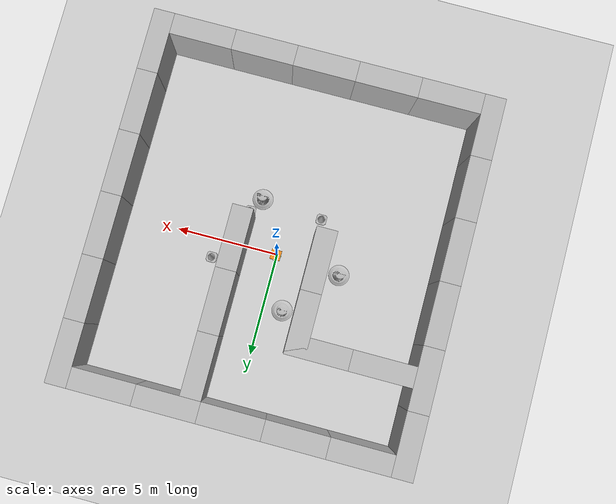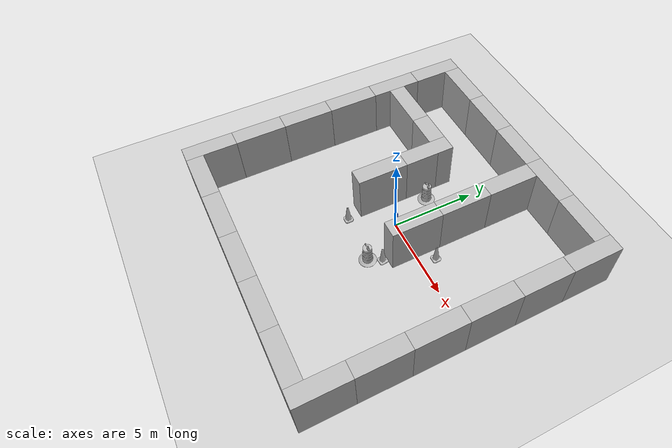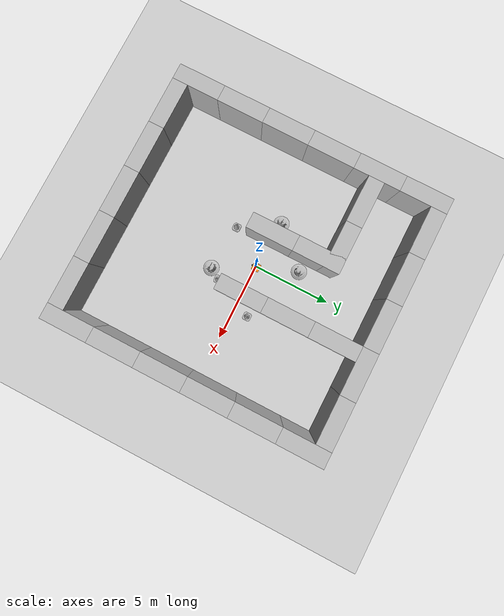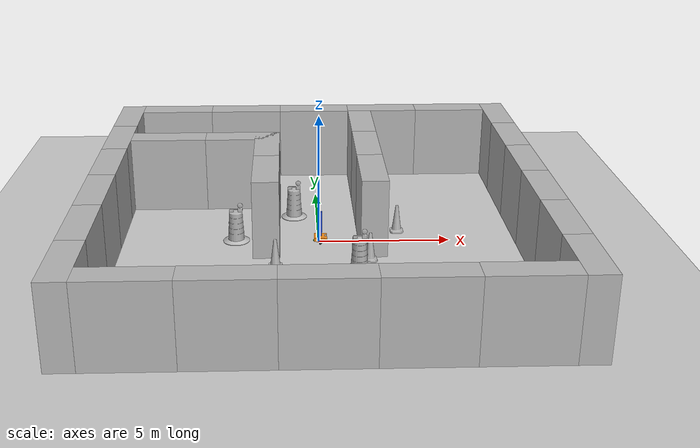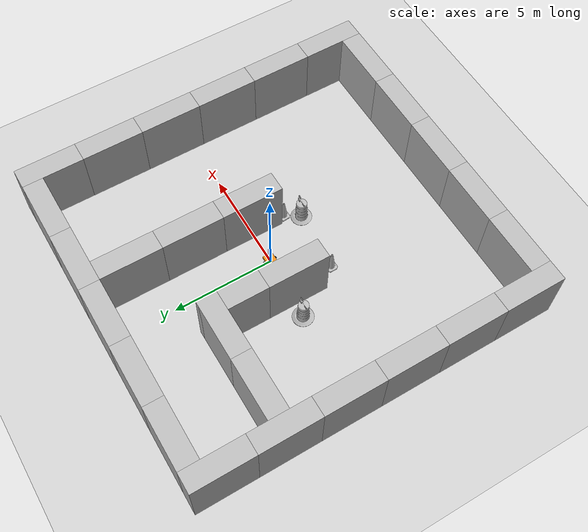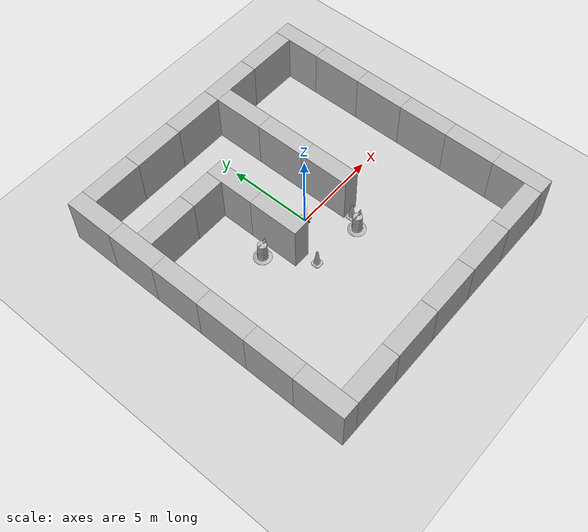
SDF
<sdf version="1.7">
 <world name="default">
  <light name="sun" type="directional">
   <pose>0 0 10 0 -0 0</pose>
   <diffuse>0.8 0.8 0.8 1</diffuse>
   <specular>0.2 0.2 0.2 1</specular>
   <attenuation>
    <range>1000</range>
    <constant>0.9</constant>
    <linear>0.01</linear>
    <quadratic>0.001</quadratic>
   </attenuation>
   <direction>-0.5 0.1 -0.9</direction>
   <spot><inner_angle>0</inner_angle><outer_angle>0</outer_angle><falloff>0</falloff></spot>
  </light>
  <model name="ground_plane">
   <static>1</static>
   <link name="link">
    <collision name="collision">
     <geometry><plane><normal>0 0 1</normal><size>100 100</size></plane></geometry>
     <surface><friction><ode><mu>100</mu><mu2>50</mu2></ode></friction></surface>
    </collision>
    <visual name="visual">
     <cast_shadows>0</cast_shadows>
     <geometry><plane><normal>0 0 1</normal><size>100 100</size></plane></geometry>
     <material>
      <script><uri>file://media/materials/scripts/gazebo.material</uri><name>Gazebo/Grey</name></script>
     </material>
    </visual>
   </link>
  </model>
  <gravity>0 0 -9.8</gravity>
  <magnetic_field>6e-06 2.3e-05 -4.2e-05</magnetic_field>
  <atmosphere type="adiabatic"/>
  <physics type="ode">
   <max_step_size>0.001</max_step_size>
   <real_time_factor>1</real_time_factor>
   <real_time_update_rate>1000</real_time_update_rate>
  </physics>
  <scene><ambient>0.4 0.4 0.4 1</ambient><background>0.7 0.7 0.7 1</background><shadows>1</shadows></scene>
  <audio><device>default</device></audio>
  <spherical_coordinates>
   <surface_model>EARTH_WGS84</surface_model>
   <latitude_deg>0</latitude_deg>
   <longitude_deg>0</longitude_deg>
   <elevation>0</elevation>
   <heading_deg>0</heading_deg>
  </spherical_coordinates>
  <model name="my_bot">
   <link name="base_link">
    <inertial>
     <pose>0.002289 0 0.206416 0 -0 0</pose>
     <mass>8.3</mass>
     <inertia>
      <ixx>1.00377</ixx>
      <ixy>0</ixy>
      <ixz>0.0019744</ixz>
      <iyy>1.01886</iyy>
      <iyz>0</iyz>
      <izz>0.220329</izz>
     </inertia>
    </inertial>
    <collision name="base_link_fixed_joint_lump__chassis_link_collision">
     <geometry><box><size>0.49 0.49 0.15</size></box></geometry>
    </collision>
    <collision name="base_link_fixed_joint_lump__caster_wheel_collision_1">
     <pose>-0.24 0 -0.11 0 -0 0</pose>
     <geometry><sphere><radius>0.035</radius></sphere></geometry>
     <surface><friction><ode><mu>0.001</mu><mu2>0.001</mu2></ode></friction></surface>
    </collision>
    <collision name="base_link_fixed_joint_lump__caster_wheel2_collision_2">
     <pose>0.24 0 -0.11 0 -0 0</pose>
     <geometry><sphere><radius>0.035</radius></sphere></geometry>
     <surface><friction><ode><mu>0.001</mu><mu2>0.001</mu2></ode></friction></surface>
    </collision>
    <collision name="base_link_fixed_joint_lump__laser_frame_collision_3">
     <pose>0.19 0 0.1025 0 -0 3.1415</pose>
     <geometry><cylinder><length>0.055</length><radius>0.035</radius></cylinder></geometry>
    </collision>
    <collision name="base_link_fixed_joint_lump__light_tube_collision_4">
     <pose>0 0 0.575 0 -0 0</pose>
     <geometry><box><size>0.1 0.1 1</size></box></geometry>
    </collision>
    <visual name="base_link_fixed_joint_lump__chassis_link_visual">
     <geometry><box><size>0.49 0.49 0.15</size></box></geometry>
     <material>
      <script><name>Gazebo/Orange</name><uri>file://media/materials/scripts/gazebo.material</uri></script>
     </material>
    </visual>
    <visual name="base_link_fixed_joint_lump__caster_wheel_visual_1">
     <pose>-0.24 0 -0.11 0 -0 0</pose>
     <geometry><sphere><radius>0.035</radius></sphere></geometry>
     <material>
      <script><name>Gazebo/Green</name><uri>file://media/materials/scripts/gazebo.material</uri></script>
     </material>
    </visual>
    <visual name="base_link_fixed_joint_lump__caster_wheel2_visual_2">
     <pose>0.24 0 -0.11 0 -0 0</pose>
     <geometry><sphere><radius>0.035</radius></sphere></geometry>
     <material>
      <script><name>Gazebo/Green</name><uri>file://media/materials/scripts/gazebo.material</uri></script>
     </material>
    </visual>
    <visual name="base_link_fixed_joint_lump__laser_frame_visual_3">
     <pose>0.19 0 0.1025 0 -0 3.1415</pose>
     <geometry><cylinder><length>0.055</length><radius>0.035</radius></cylinder></geometry>
     <material>
      <script><name>Gazebo/White</name><uri>file://media/materials/scripts/gazebo.material</uri></script>
     </material>
    </visual>
    <visual name="base_link_fixed_joint_lump__light_tube_visual_4">
     <pose>0 0 0.575 0 -0 0</pose>
     <geometry><box><size>0.1 0.1 1</size></box></geometry>
     <material>
      <script><name>Gazebo/Blue</name><uri>file://media/materials/scripts/gazebo.material</uri></script>
     </material>
    </visual>
    <sensor name="laser" type="ray">
     <visualize>0</visualize>
     <update_rate>10</update_rate>
     <ray>
      <scan>
       <horizontal>
        <samples>360</samples>
        <min_angle>-3.14</min_angle>
        <max_angle>3.14</max_angle>
        <resolution>1</resolution>
       </horizontal>
       <vertical><samples>1</samples><min_angle>0</min_angle><max_angle>0</max_angle></vertical>
      </scan>
      <range><min>0.3</min><max>12</max></range>
     </ray>
     <plugin name="laser_controller" filename="libgazebo_ros_ray_sensor.so">
      <ros><argument>~/out:=scan</argument></ros>
      <output_type>sensor_msgs/LaserScan</output_type>
      <frame_name>laser_frame</frame_name>
     </plugin>
     <pose>0.19 0 0.1025 0 -0 3.1415</pose>
    </sensor>
   </link>
   <joint name="left_wheel_joint" type="revolute">
    <pose relative_to="base_link">0 0.29 -0.09 -1.5708 0 0</pose>
    <parent>base_link</parent>
    <child>left_wheel</child>
    <axis>
     <xyz>0 0 1</xyz>
     <limit><lower>-1e+16</lower><upper>1e+16</upper></limit>
     <dynamics><spring_reference>0</spring_reference><spring_stiffness>0</spring_stiffness></dynamics>
    </axis>
   </joint>
   <link name="left_wheel">
    <pose relative_to="left_wheel_joint">0 0 0 0 -0 0</pose>
    <inertial>
     <mass>0.2</mass>
     <inertia><ixx>0.00024</ixx><ixy>0</ixy><ixz>0</ixz><iyy>0.00024</iyy><iyz>0</iyz><izz>0.00036</izz></inertia>
    </inertial>
    <collision name="left_wheel_collision"><geometry><sphere><radius>0.06</radius></sphere></geometry></collision>
    <visual name="left_wheel_visual">
     <geometry><cylinder><length>0.06</length><radius>0.06</radius></cylinder></geometry>
     <material>
      <script><name>Gazebo/Black</name><uri>file://media/materials/scripts/gazebo.material</uri></script>
     </material>
    </visual>
   </link>
   <joint name="right_wheel_joint" type="revolute">
    <pose relative_to="base_link">0 -0.29 -0.09 -1.5708 0 0</pose>
    <parent>base_link</parent>
    <child>right_wheel</child>
    <axis>
     <xyz>0 0 1</xyz>
     <limit><lower>-1e+16</lower><upper>1e+16</upper></limit>
     <dynamics><spring_reference>0</spring_reference><spring_stiffness>0</spring_stiffness></dynamics>
    </axis>
   </joint>
   <link name="right_wheel">
    <pose relative_to="right_wheel_joint">0 0 0 0 -0 0</pose>
    <inertial>
     <mass>0.2</mass>
     <inertia><ixx>0.00024</ixx><ixy>0</ixy><ixz>0</ixz><iyy>0.00024</iyy><iyz>0</iyz><izz>0.00036</izz></inertia>
    </inertial>
    <collision name="right_wheel_collision">
     <geometry><sphere><radius>0.06</radius></sphere></geometry>
    </collision>
    <visual name="right_wheel_visual">
     <geometry><cylinder><length>0.06</length><radius>0.06</radius></cylinder></geometry>
     <material>
      <script><name>Gazebo/Black</name><uri>file://media/materials/scripts/gazebo.material</uri></script>
     </material>
    </visual>
   </link>
   <static>0</static>
   <plugin name="gazebo_ros2_control" filename="libgazebo_ros2_control.so">
    <parameters>/home/alejandro/diff_ws/install/diff_pkg/share/diff_pkg/config/my_controller.yaml</parameters>
    <parameters>/home/alejandro/diff_ws/install/diff_pkg/share/diff_pkg/config/gaz_ros2_ctl_use_sim.yaml</parameters>
   </plugin>
   <pose>0.051671 0.02576 0.149977 0 0.020778 -0.014634</pose>
  </model>
  <model name="Construction Cone">
   <link name="link">
    <collision name="collision">
     <geometry>
      <mesh><scale>10 10 10</scale><uri>model://construction_cone/meshes/construction_cone.dae</uri></mesh>
     </geometry>
    </collision>
    <visual name="visual">
     <geometry>
      <mesh><scale>10 10 10</scale><uri>model://construction_cone/meshes/construction_cone.dae</uri></mesh>
     </geometry>
    </visual>
    <inertial>
     <inertia><ixx>1</ixx><ixy>0</ixy><ixz>0</ixz><iyy>1</iyy><iyz>0</iyz><izz>1</izz></inertia>
     <mass>1</mass>
    </inertial>
   </link>
   <pose>3.0666 0.924785 -0 0 -1e-06 0</pose>
  </model>
  <model name="Construction Barrel">
   <link name="link">
    <inertial>
     <pose>0 0 0.4 0 -0 0</pose>
     <mass>500</mass>
     <inertia><ixx>51.2096</ixx><iyy>51.2096</iyy><izz>25</izz><ixy>0</ixy><ixz>0</ixz><iyz>0</iyz></inertia>
    </inertial>
    <collision name="collision">
     <geometry><mesh><uri>model://construction_barrel/meshes/construction_barrel.dae</uri></mesh></geometry>
    </collision>
    <visual name="visual">
     <geometry><mesh><uri>model://construction_barrel/meshes/construction_barrel.dae</uri></mesh></geometry>
    </visual>
   </link>
   <pose>1.3808 -2.48261 -2e-06 2e-06 7e-06 -2.5e-05</pose>
  </model>
  <model name="Construction Barrel_0">
   <link name="link">
    <inertial>
     <pose>0 0 0.4 0 -0 0</pose>
     <mass>500</mass>
     <inertia><ixx>51.2096</ixx><iyy>51.2096</iyy><izz>25</izz><ixy>0</ixy><ixz>0</ixz><iyz>0</iyz></inertia>
    </inertial>
    <collision name="collision">
     <geometry><mesh><uri>model://construction_barrel/meshes/construction_barrel.dae</uri></mesh></geometry>
    </collision>
    <visual name="visual">
     <geometry><mesh><uri>model://construction_barrel/meshes/construction_barrel.dae</uri></mesh></geometry>
    </visual>
   </link>
   <pose>-0.937987 2.56063 -0 1e-06 -1e-06 -2.8e-05</pose>
  </model>
  <model name="Construction Cone_0">
   <link name="link">
    <collision name="collision">
     <geometry>
      <mesh><scale>10 10 10</scale><uri>model://construction_cone/meshes/construction_cone.dae</uri></mesh>
     </geometry>
    </collision>
    <visual name="visual">
     <geometry>
      <mesh><scale>10 10 10</scale><uri>model://construction_cone/meshes/construction_cone.dae</uri></mesh>
     </geometry>
    </visual>
    <inertial>
     <inertia><ixx>1</ixx><ixy>0</ixy><ixz>0</ixz><iyy>1</iyy><iyz>0</iyz><izz>1</izz></inertia>
     <mass>1</mass>
    </inertial>
   </link>
   <pose>1.82433 -1.76317 -0 0 -0 0.068755</pose>
  </model>
  <model name="Construction Cone_1">
   <link name="link">
    <collision name="collision">
     <geometry>
      <mesh><scale>10 10 10</scale><uri>model://construction_cone/meshes/construction_cone.dae</uri></mesh>
     </geometry>
    </collision>
    <visual name="visual">
     <geometry>
      <mesh><scale>10 10 10</scale><uri>model://construction_cone/meshes/construction_cone.dae</uri></mesh>
     </geometry>
    </visual>
    <inertial>
     <inertia><ixx>1</ixx><ixy>0</ixy><ixz>0</ixz><iyy>1</iyy><iyz>0</iyz><izz>1</izz></inertia>
     <mass>1</mass>
    </inertial>
   </link>
   <pose>-1.65759 -2.24853 -0 0 -0 0</pose>
  </model>
  <model name="Construction Barrel_1">
   <link name="link">
    <inertial>
     <pose>0 0 0.4 0 -0 0</pose>
     <mass>500</mass>
     <inertia><ixx>51.2096</ixx><iyy>51.2096</iyy><izz>25</izz><ixy>0</ixy><ixz>0</ixz><iyz>0</iyz></inertia>
    </inertial>
    <collision name="collision">
     <geometry><mesh><uri>model://construction_barrel/meshes/construction_barrel.dae</uri></mesh></geometry>
    </collision>
    <visual name="visual">
     <geometry><mesh><uri>model://construction_barrel/meshes/construction_barrel.dae</uri></mesh></geometry>
    </visual>
   </link>
   <pose>-3.17647 0.188345 -1e-06 0 5e-06 -3e-05</pose>
  </model>
  <model name="brick_box_3x1x3">
   <static>1</static>
   <link name="chassis">
    <pose>0 0 1.5 0 -0 0</pose>
    <collision name="collision"><geometry><box><size>3 1 3</size></box></geometry></collision>
    <visual name="visual">
     <geometry><mesh><uri>model://brick_box_3x1x3/meshes/simple_box.dae</uri><scale>3 1 3</scale></mesh></geometry>
     <material>
      <script>
       <uri>model://brick_box_3x1x3/materials/scripts</uri>
       <uri>model://brick_box_3x1x3/materials/textures</uri>
       <name>BrickBox/Diffuse</name>
      </script>
     </material>
    </visual>
   </link>
   <pose>0 8 0 0 -0 0</pose>
  </model>
  <model name="brick_box_3x1x3_0">
   <static>1</static>
   <link name="chassis">
    <pose>0 0 1.5 0 -0 0</pose>
    <collision name="collision"><geometry><box><size>3 1 3</size></box></geometry></collision>
    <visual name="visual">
     <geometry><mesh><uri>model://brick_box_3x1x3/meshes/simple_box.dae</uri><scale>3 1 3</scale></mesh></geometry>
     <material>
      <script>
       <uri>model://brick_box_3x1x3/materials/scripts</uri>
       <uri>model://brick_box_3x1x3/materials/textures</uri>
       <name>BrickBox/Diffuse</name>
      </script>
     </material>
    </visual>
   </link>
   <pose>3 8 0 0 -0 0</pose>
  </model>
  <model name="brick_box_3x1x3_1">
   <static>1</static>
   <link name="chassis">
    <pose>0 0 1.5 0 -0 0</pose>
    <collision name="collision"><geometry><box><size>3 1 3</size></box></geometry></collision>
    <visual name="visual">
     <geometry><mesh><uri>model://brick_box_3x1x3/meshes/simple_box.dae</uri><scale>3 1 3</scale></mesh></geometry>
     <material>
      <script>
       <uri>model://brick_box_3x1x3/materials/scripts</uri>
       <uri>model://brick_box_3x1x3/materials/textures</uri>
       <name>BrickBox/Diffuse</name>
      </script>
     </material>
    </visual>
   </link>
   <pose>-8 -5 0 0 -0 1.5708</pose>
  </model>
  <model name="brick_box_3x1x3_2">
   <static>1</static>
   <link name="chassis">
    <pose>0 0 1.5 0 -0 0</pose>
    <collision name="collision"><geometry><box><size>3 1 3</size></box></geometry></collision>
    <visual name="visual">
     <geometry><mesh><uri>model://brick_box_3x1x3/meshes/simple_box.dae</uri><scale>3 1 3</scale></mesh></geometry>
     <material>
      <script>
       <uri>model://brick_box_3x1x3/materials/scripts</uri>
       <uri>model://brick_box_3x1x3/materials/textures</uri>
       <name>BrickBox/Diffuse</name>
      </script>
     </material>
    </visual>
   </link>
   <pose>-8 -2 0 0 -0 1.5708</pose>
  </model>
  <model name="brick_box_3x1x3_3">
   <static>1</static>
   <link name="chassis">
    <pose>0 0 1.5 0 -0 0</pose>
    <collision name="collision"><geometry><box><size>3 1 3</size></box></geometry></collision>
    <visual name="visual">
     <geometry><mesh><uri>model://brick_box_3x1x3/meshes/simple_box.dae</uri><scale>3 1 3</scale></mesh></geometry>
     <material>
      <script>
       <uri>model://brick_box_3x1x3/materials/scripts</uri>
       <uri>model://brick_box_3x1x3/materials/textures</uri>
       <name>BrickBox/Diffuse</name>
      </script>
     </material>
    </visual>
   </link>
   <pose>-8 1 0 0 -0 1.5708</pose>
  </model>
  <model name="brick_box_3x1x3_4">
   <static>1</static>
   <link name="chassis">
    <pose>0 0 1.5 0 -0 0</pose>
    <collision name="collision"><geometry><box><size>3 1 3</size></box></geometry></collision>
    <visual name="visual">
     <geometry><mesh><uri>model://brick_box_3x1x3/meshes/simple_box.dae</uri><scale>3 1 3</scale></mesh></geometry>
     <material>
      <script>
       <uri>model://brick_box_3x1x3/materials/scripts</uri>
       <uri>model://brick_box_3x1x3/materials/textures</uri>
       <name>BrickBox/Diffuse</name>
      </script>
     </material>
    </visual>
   </link>
   <pose>-8 4 0 0 -0 1.5708</pose>
  </model>
  <model name="brick_box_3x1x3_5">
   <static>1</static>
   <link name="chassis">
    <pose>0 0 1.5 0 -0 0</pose>
    <collision name="collision"><geometry><box><size>3 1 3</size></box></geometry></collision>
    <visual name="visual">
     <geometry><mesh><uri>model://brick_box_3x1x3/meshes/simple_box.dae</uri><scale>3 1 3</scale></mesh></geometry>
     <material>
      <script>
       <uri>model://brick_box_3x1x3/materials/scripts</uri>
       <uri>model://brick_box_3x1x3/materials/textures</uri>
       <name>BrickBox/Diffuse</name>
      </script>
     </material>
    </visual>
   </link>
   <pose>-8 7 0 0 -0 1.5708</pose>
  </model>
  <model name="brick_box_3x1x3_6">
   <static>1</static>
   <link name="chassis">
    <pose>0 0 1.5 0 -0 0</pose>
    <collision name="collision"><geometry><box><size>3 1 3</size></box></geometry></collision>
    <visual name="visual">
     <geometry><mesh><uri>model://brick_box_3x1x3/meshes/simple_box.dae</uri><scale>3 1 3</scale></mesh></geometry>
     <material>
      <script>
       <uri>model://brick_box_3x1x3/materials/scripts</uri>
       <uri>model://brick_box_3x1x3/materials/textures</uri>
       <name>BrickBox/Diffuse</name>
      </script>
     </material>
    </visual>
   </link>
   <pose>-6 8 0 0 -0 0</pose>
  </model>
  <model name="brick_box_3x1x3_7">
   <static>1</static>
   <link name="chassis">
    <pose>0 0 1.5 0 -0 0</pose>
    <collision name="collision"><geometry><box><size>3 1 3</size></box></geometry></collision>
    <visual name="visual">
     <geometry><mesh><uri>model://brick_box_3x1x3/meshes/simple_box.dae</uri><scale>3 1 3</scale></mesh></geometry>
     <material>
      <script>
       <uri>model://brick_box_3x1x3/materials/scripts</uri>
       <uri>model://brick_box_3x1x3/materials/textures</uri>
       <name>BrickBox/Diffuse</name>
      </script>
     </material>
    </visual>
   </link>
   <pose>-3 8 0 0 -0 0</pose>
  </model>
  <model name="brick_box_3x1x3_1_clone">
   <static>1</static>
   <link name="chassis">
    <pose>0 0 1.5 0 -0 0</pose>
    <collision name="collision"><geometry><box><size>3 1 3</size></box></geometry></collision>
    <visual name="visual">
     <geometry><mesh><uri>model://brick_box_3x1x3/meshes/simple_box.dae</uri><scale>3 1 3</scale></mesh></geometry>
     <material>
      <script>
       <uri>model://brick_box_3x1x3/materials/scripts</uri>
       <uri>model://brick_box_3x1x3/materials/textures</uri>
       <name>BrickBox/Diffuse</name>
      </script>
     </material>
    </visual>
   </link>
   <pose>-8 -8 0 0 -0 1.5708</pose>
  </model>
  <model name="brick_box_3x1x3_6_clone">
   <static>1</static>
   <link name="chassis">
    <pose>0 0 1.5 0 -0 0</pose>
    <collision name="collision"><geometry><box><size>3 1 3</size></box></geometry></collision>
    <visual name="visual">
     <geometry><mesh><uri>model://brick_box_3x1x3/meshes/simple_box.dae</uri><scale>3 1 3</scale></mesh></geometry>
     <material>
      <script>
       <uri>model://brick_box_3x1x3/materials/scripts</uri>
       <uri>model://brick_box_3x1x3/materials/textures</uri>
       <name>BrickBox/Diffuse</name>
      </script>
     </material>
    </visual>
   </link>
   <pose>-6 -9 0 0 -0 0</pose>
  </model>
  <model name="brick_box_3x1x3_6_clone_0">
   <static>1</static>
   <link name="chassis">
    <pose>0 0 1.5 0 -0 0</pose>
    <collision name="collision"><geometry><box><size>3 1 3</size></box></geometry></collision>
    <visual name="visual">
     <geometry><mesh><uri>model://brick_box_3x1x3/meshes/simple_box.dae</uri><scale>3 1 3</scale></mesh></geometry>
     <material>
      <script>
       <uri>model://brick_box_3x1x3/materials/scripts</uri>
       <uri>model://brick_box_3x1x3/materials/textures</uri>
       <name>BrickBox/Diffuse</name>
      </script>
     </material>
    </visual>
   </link>
   <pose>-3 -9 0 0 -0 0</pose>
  </model>
  <model name="brick_box_3x1x3_6_clone_1">
   <static>1</static>
   <link name="chassis">
    <pose>0 0 1.5 0 -0 0</pose>
    <collision name="collision"><geometry><box><size>3 1 3</size></box></geometry></collision>
    <visual name="visual">
     <geometry><mesh><uri>model://brick_box_3x1x3/meshes/simple_box.dae</uri><scale>3 1 3</scale></mesh></geometry>
     <material>
      <script>
       <uri>model://brick_box_3x1x3/materials/scripts</uri>
       <uri>model://brick_box_3x1x3/materials/textures</uri>
       <name>BrickBox/Diffuse</name>
      </script>
     </material>
    </visual>
   </link>
   <pose>0 -9 0 0 -0 0</pose>
  </model>
  <model name="brick_box_3x1x3_6_clone_2">
   <static>1</static>
   <link name="chassis">
    <pose>0 0 1.5 0 -0 0</pose>
    <collision name="collision"><geometry><box><size>3 1 3</size></box></geometry></collision>
    <visual name="visual">
     <geometry><mesh><uri>model://brick_box_3x1x3/meshes/simple_box.dae</uri><scale>3 1 3</scale></mesh></geometry>
     <material>
      <script>
       <uri>model://brick_box_3x1x3/materials/scripts</uri>
       <uri>model://brick_box_3x1x3/materials/textures</uri>
       <name>BrickBox/Diffuse</name>
      </script>
     </material>
    </visual>
   </link>
   <pose>3 -9 0 0 -0 0</pose>
  </model>
  <model name="brick_box_3x1x3_0_clone">
   <static>1</static>
   <link name="chassis">
    <pose>0 0 1.5 0 -0 0</pose>
    <collision name="collision"><geometry><box><size>3 1 3</size></box></geometry></collision>
    <visual name="visual">
     <geometry><mesh><uri>model://brick_box_3x1x3/meshes/simple_box.dae</uri><scale>3 1 3</scale></mesh></geometry>
     <material>
      <script>
       <uri>model://brick_box_3x1x3/materials/scripts</uri>
       <uri>model://brick_box_3x1x3/materials/textures</uri>
       <name>BrickBox/Diffuse</name>
      </script>
     </material>
    </visual>
   </link>
   <pose>6 8 0 0 -0 0</pose>
  </model>
  <model name="brick_box_3x1x3_0_clone_0">
   <static>1</static>
   <link name="chassis">
    <pose>0 0 1.5 0 -0 0</pose>
    <collision name="collision"><geometry><box><size>3 1 3</size></box></geometry></collision>
    <visual name="visual">
     <geometry><mesh><uri>model://brick_box_3x1x3/meshes/simple_box.dae</uri><scale>3 1 3</scale></mesh></geometry>
     <material>
      <script>
       <uri>model://brick_box_3x1x3/materials/scripts</uri>
       <uri>model://brick_box_3x1x3/materials/textures</uri>
       <name>BrickBox/Diffuse</name>
      </script>
     </material>
    </visual>
   </link>
   <pose>6 -9 0 0 -0 0</pose>
  </model>
  <model name="brick_box_3x1x3_5_clone">
   <static>1</static>
   <link name="chassis">
    <pose>0 0 1.5 0 -0 0</pose>
    <collision name="collision"><geometry><box><size>3 1 3</size></box></geometry></collision>
    <visual name="visual">
     <geometry><mesh><uri>model://brick_box_3x1x3/meshes/simple_box.dae</uri><scale>3 1 3</scale></mesh></geometry>
     <material>
      <script>
       <uri>model://brick_box_3x1x3/materials/scripts</uri>
       <uri>model://brick_box_3x1x3/materials/textures</uri>
       <name>BrickBox/Diffuse</name>
      </script>
     </material>
    </visual>
   </link>
   <pose>8 7 0 0 -0 1.5708</pose>
  </model>
  <model name="brick_box_3x1x3_5_clone_0">
   <static>1</static>
   <link name="chassis">
    <pose>0 0 1.5 0 -0 0</pose>
    <collision name="collision"><geometry><box><size>3 1 3</size></box></geometry></collision>
    <visual name="visual">
     <geometry><mesh><uri>model://brick_box_3x1x3/meshes/simple_box.dae</uri><scale>3 1 3</scale></mesh></geometry>
     <material>
      <script>
       <uri>model://brick_box_3x1x3/materials/scripts</uri>
       <uri>model://brick_box_3x1x3/materials/textures</uri>
       <name>BrickBox/Diffuse</name>
      </script>
     </material>
    </visual>
   </link>
   <pose>8 4 0 0 -0 1.5708</pose>
  </model>
  <model name="brick_box_3x1x3_5_clone_1">
   <static>1</static>
   <link name="chassis">
    <pose>0 0 1.5 0 -0 0</pose>
    <collision name="collision"><geometry><box><size>3 1 3</size></box></geometry></collision>
    <visual name="visual">
     <geometry><mesh><uri>model://brick_box_3x1x3/meshes/simple_box.dae</uri><scale>3 1 3</scale></mesh></geometry>
     <material>
      <script>
       <uri>model://brick_box_3x1x3/materials/scripts</uri>
       <uri>model://brick_box_3x1x3/materials/textures</uri>
       <name>BrickBox/Diffuse</name>
      </script>
     </material>
    </visual>
   </link>
   <pose>8 1 0 0 -0 1.5708</pose>
  </model>
  <model name="brick_box_3x1x3_5_clone_2">
   <static>1</static>
   <link name="chassis">
    <pose>0 0 1.5 0 -0 0</pose>
    <collision name="collision"><geometry><box><size>3 1 3</size></box></geometry></collision>
    <visual name="visual">
     <geometry><mesh><uri>model://brick_box_3x1x3/meshes/simple_box.dae</uri><scale>3 1 3</scale></mesh></geometry>
     <material>
      <script>
       <uri>model://brick_box_3x1x3/materials/scripts</uri>
       <uri>model://brick_box_3x1x3/materials/textures</uri>
       <name>BrickBox/Diffuse</name>
      </script>
     </material>
    </visual>
   </link>
   <pose>8 -2 0 0 -0 1.5708</pose>
  </model>
  <model name="brick_box_3x1x3_5_clone_3">
   <static>1</static>
   <link name="chassis">
    <pose>0 0 1.5 0 -0 0</pose>
    <collision name="collision"><geometry><box><size>3 1 3</size></box></geometry></collision>
    <visual name="visual">
     <geometry><mesh><uri>model://brick_box_3x1x3/meshes/simple_box.dae</uri><scale>3 1 3</scale></mesh></geometry>
     <material>
      <script>
       <uri>model://brick_box_3x1x3/materials/scripts</uri>
       <uri>model://brick_box_3x1x3/materials/textures</uri>
       <name>BrickBox/Diffuse</name>
      </script>
     </material>
    </visual>
   </link>
   <pose>8 -5 0 0 -0 1.5708</pose>
  </model>
  <model name="brick_box_3x1x3_5_clone_4">
   <static>1</static>
   <link name="chassis">
    <pose>0 0 1.5 0 -0 0</pose>
    <collision name="collision"><geometry><box><size>3 1 3</size></box></geometry></collision>
    <visual name="visual">
     <geometry><mesh><uri>model://brick_box_3x1x3/meshes/simple_box.dae</uri><scale>3 1 3</scale></mesh></geometry>
     <material>
      <script>
       <uri>model://brick_box_3x1x3/materials/scripts</uri>
       <uri>model://brick_box_3x1x3/materials/textures</uri>
       <name>BrickBox/Diffuse</name>
      </script>
     </material>
    </visual>
   </link>
   <pose>8 -8 0 0 -0 1.5708</pose>
  </model>
  <model name="brick_box_3x1x3_5_clone_0_clone">
   <static>1</static>
   <link name="chassis">
    <pose>0 0 1.5 0 -0 0</pose>
    <collision name="collision"><geometry><box><size>3 1 3</size></box></geometry></collision>
    <visual name="visual">
     <geometry><mesh><uri>model://brick_box_3x1x3/meshes/simple_box.dae</uri><scale>3 1 3</scale></mesh></geometry>
     <material>
      <script>
       <uri>model://brick_box_3x1x3/materials/scripts</uri>
       <uri>model://brick_box_3x1x3/materials/textures</uri>
       <name>BrickBox/Diffuse</name>
      </script>
     </material>
    </visual>
   </link>
   <pose>2 6 0 0 -0 1.5708</pose>
  </model>
  <model name="brick_box_3x1x3_5_clone_0_clone_0">
   <static>1</static>
   <link name="chassis">
    <pose>0 0 1.5 0 -0 0</pose>
    <collision name="collision"><geometry><box><size>3 1 3</size></box></geometry></collision>
    <visual name="visual">
     <geometry><mesh><uri>model://brick_box_3x1x3/meshes/simple_box.dae</uri><scale>3 1 3</scale></mesh></geometry>
     <material>
      <script>
       <uri>model://brick_box_3x1x3/materials/scripts</uri>
       <uri>model://brick_box_3x1x3/materials/textures</uri>
       <name>BrickBox/Diffuse</name>
      </script>
     </material>
    </visual>
   </link>
   <pose>2 3 0 0 -0 1.5708</pose>
  </model>
  <model name="brick_box_3x1x3_5_clone_0_clone_1">
   <static>1</static>
   <link name="chassis">
    <pose>0 0 1.5 0 -0 0</pose>
    <collision name="collision"><geometry><box><size>3 1 3</size></box></geometry></collision>
    <visual name="visual">
     <geometry><mesh><uri>model://brick_box_3x1x3/meshes/simple_box.dae</uri><scale>3 1 3</scale></mesh></geometry>
     <material>
      <script>
       <uri>model://brick_box_3x1x3/materials/scripts</uri>
       <uri>model://brick_box_3x1x3/materials/textures</uri>
       <name>BrickBox/Diffuse</name>
      </script>
     </material>
    </visual>
   </link>
   <pose>2 0 0 0 -0 1.5708</pose>
  </model>
  <model name="brick_box_3x1x3_5_clone_0_clone_2">
   <static>1</static>
   <link name="chassis">
    <pose>0 0 1.5 0 -0 0</pose>
    <collision name="collision"><geometry><box><size>3 1 3</size></box></geometry></collision>
    <visual name="visual">
     <geometry><mesh><uri>model://brick_box_3x1x3/meshes/simple_box.dae</uri><scale>3 1 3</scale></mesh></geometry>
     <material>
      <script>
       <uri>model://brick_box_3x1x3/materials/scripts</uri>
       <uri>model://brick_box_3x1x3/materials/textures</uri>
       <name>BrickBox/Diffuse</name>
      </script>
     </material>
    </visual>
   </link>
   <pose>-2 0 0 0 -0 1.5708</pose>
  </model>
  <model name="brick_box_3x1x3_5_clone_0_clone_3">
   <static>1</static>
   <link name="chassis">
    <pose>0 0 1.5 0 -0 0</pose>
    <collision name="collision"><geometry><box><size>3 1 3</size></box></geometry></collision>
    <visual name="visual">
     <geometry><mesh><uri>model://brick_box_3x1x3/meshes/simple_box.dae</uri><scale>3 1 3</scale></mesh></geometry>
     <material>
      <script>
       <uri>model://brick_box_3x1x3/materials/scripts</uri>
       <uri>model://brick_box_3x1x3/materials/textures</uri>
       <name>BrickBox/Diffuse</name>
      </script>
     </material>
    </visual>
   </link>
   <pose>-2 3 0 0 -0 1.5708</pose>
  </model>
  <model name="brick_box_3x1x3_6_clone_3">
   <static>1</static>
   <link name="chassis">
    <pose>0 0 1.5 0 -0 0</pose>
    <collision name="collision"><geometry><box><size>3 1 3</size></box></geometry></collision>
    <visual name="visual">
     <geometry><mesh><uri>model://brick_box_3x1x3/meshes/simple_box.dae</uri><scale>3 1 3</scale></mesh></geometry>
     <material>
      <script>
       <uri>model://brick_box_3x1x3/materials/scripts</uri>
       <uri>model://brick_box_3x1x3/materials/textures</uri>
       <name>BrickBox/Diffuse</name>
      </script>
     </material>
    </visual>
   </link>
   <pose>-3 4 0 0 -0 0</pose>
  </model>
  <model name="brick_box_3x1x3_6_clone_3_clone">
   <static>1</static>
   <link name="chassis">
    <pose>0 0 1.5 0 -0 0</pose>
    <collision name="collision"><geometry><box><size>3 1 3</size></box></geometry></collision>
    <visual name="visual">
     <geometry><mesh><uri>model://brick_box_3x1x3/meshes/simple_box.dae</uri><scale>3 1 3</scale></mesh></geometry>
     <material>
      <script>
       <uri>model://brick_box_3x1x3/materials/scripts</uri>
       <uri>model://brick_box_3x1x3/materials/textures</uri>
       <name>BrickBox/Diffuse</name>
      </script>
     </material>
    </visual>
   </link>
   <pose>-6 4 0 0 -0 0</pose>
  </model>
 </world>
</sdf>
